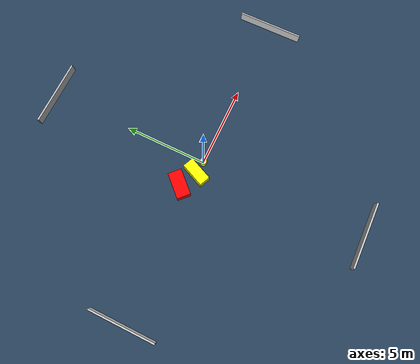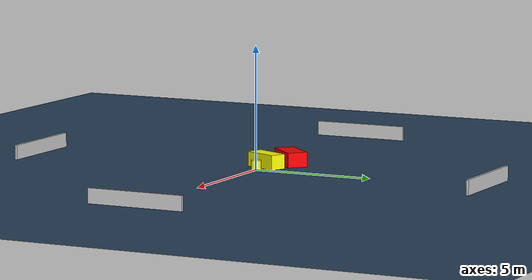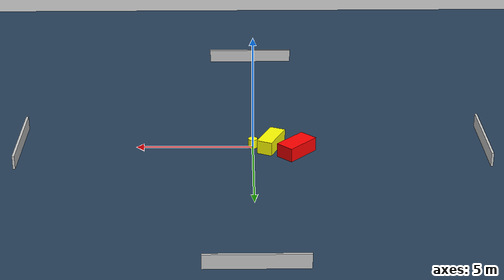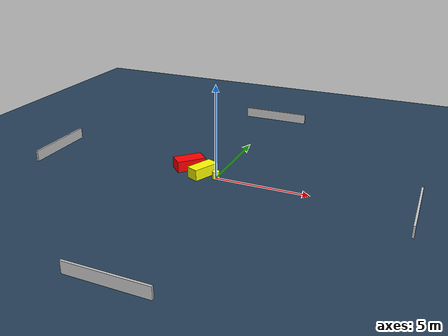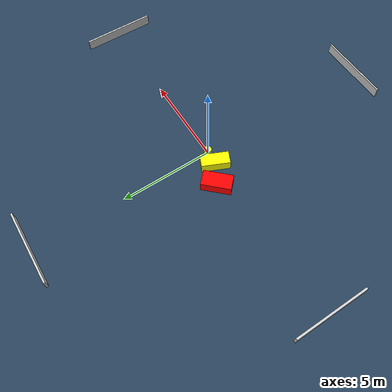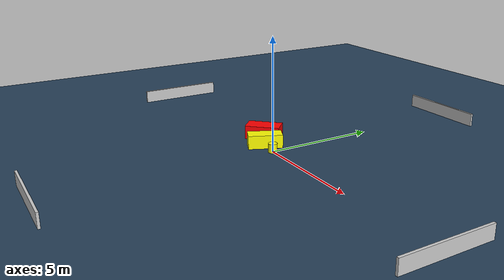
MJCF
<?xml version="1.0" ?>
<mujoco model="generated_environment">
  <option timestep="0.01" integrator="RK4" cone="elliptic"/>
  <default>
    <geom density="1"/>
  </default>
  <asset>
    <texture builtin="gradient" height="3072" name="skybox" rgb1="0.3 0.5 0.7" rgb2="0 0 0" type="skybox" width="512"/>
    <texture builtin="checker" height="300" name="groundplane" rgb1="0.2 0.3 0.4" rgb2="0.1 0.2 0.3" type="2d" width="300"/>
    <material name="groundplane" reflectance="0.2" texrepeat="5 5" texture="groundplane"/>
  </asset>
  <worldbody>
    <light dir="0 0 -1" directional="true" pos="0 0 1.5"/>
    <geom condim="3" friction="0.5 0.005 0.001" material="groundplane" name="floor" pos="0 0 0" size="0 0 0.05" type="plane"/>
    <body name="walls">
      <geom name="wall_1" condim="4" pos="-10.0 0.0 0.3" rgba="0.800000011920929 0.800000011920929 0.800000011920929 1.0" size="0.05 2.0 0.3" type="box"/>
      <geom name="wall_2" condim="4" pos="10.0 0.0 0.3" rgba="0.800000011920929 0.800000011920929 0.800000011920929 1.0" size="0.05 2.0 0.3" type="box"/>
      <geom name="wall_3" condim="4" pos="0.0 -10.0 0.3" rgba="0.800000011920929 0.800000011920929 0.800000011920929 1.0" size="2.0 0.05 0.3" type="box"/>
      <geom name="wall_4" condim="4" pos="0.0 10.0 0.3" rgba="0.800000011920929 0.800000011920929 0.800000011920929 1.0" size="2.0 0.05 0.3" type="box"/>
    </body>
    <body name="robot">
      <joint name="joint_x" type="slide" pos="0 0 0" axis="1 0 0"/>
      <joint name="joint_y" type="slide" pos="0 0 0" axis="0 1 0"/>
      <geom name="robot" type="cylinder" pos="0.0 0.0 0.2" size="0.2 0.2 0.0" mass="5.0" friction="1.0 0.005 0.0001" condim="4" rgba="1.0 1.0 0.0 1.0"/>
    </body>
    <body name="obstacle_1_movable">
      <geom name="obstacle_1_movable" condim="4" pos="-0.7852665369483665 0.06949737251091283 0.3" euler="0 0 245.81569794775973" friction="0.0 0.005 0.001" rgba="1.0 1.0 0.0 1.0" size="0.7552169837581597 0.33949410011375614 0.3" type="box" mass="0.1"/>
      <joint type="free"/>
    </body>
    <body name="obstacle_2_static">
      <geom name="obstacle_2_static" condim="4" pos="-1.8574256804975222 0.6485493384656064 0.3" euler="0 0 136.2025113821348" friction="0.0 0.005 0.001" rgba="1.0 0.0 0.0 1.0" size="0.4112205000544515 0.7877203094019174 0.3" type="box"/>
    </body>
  </worldbody>
  <actuator>
    <motor name="actuator_x" joint="joint_x" gear="1" ctrlrange="-1 1"/>
    <motor name="actuator_y" joint="joint_y" gear="1" ctrlrange="-1 1"/>
  </actuator>
</mujoco>
